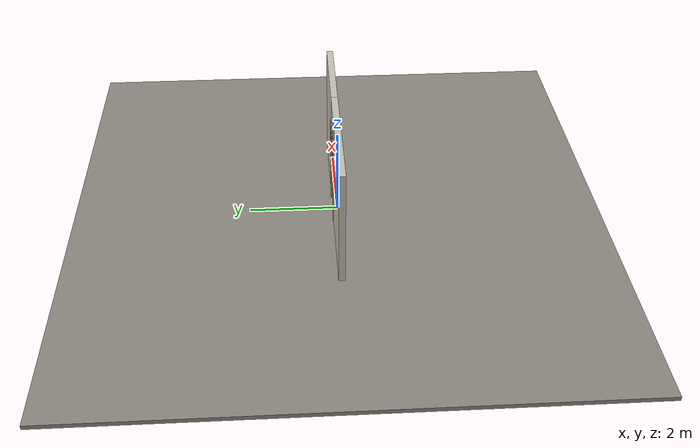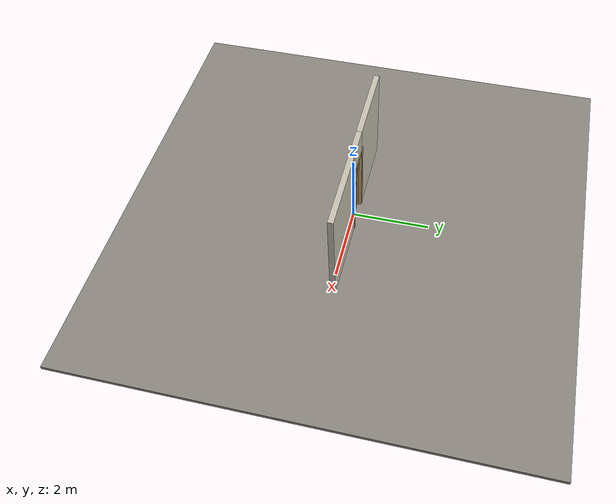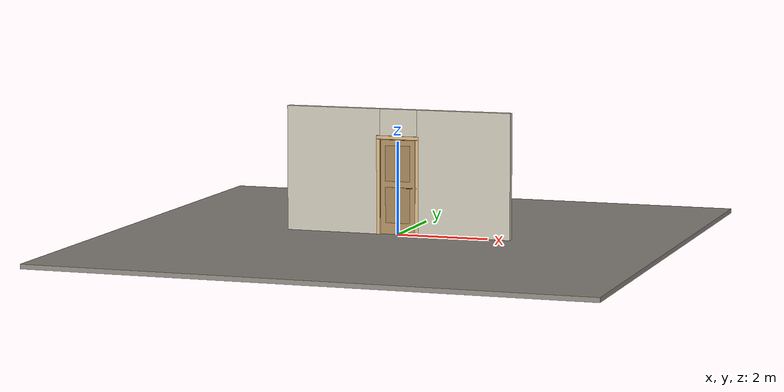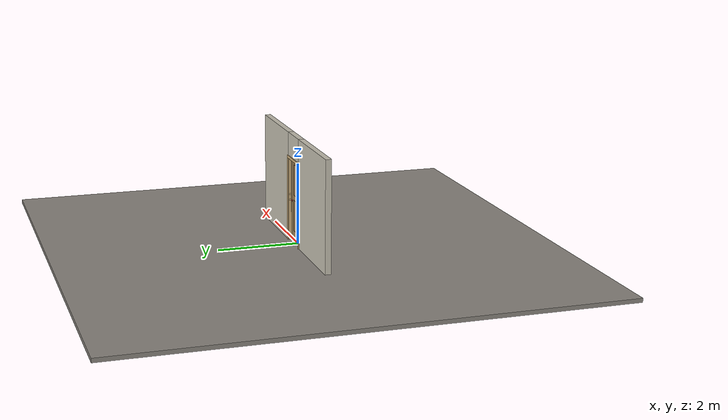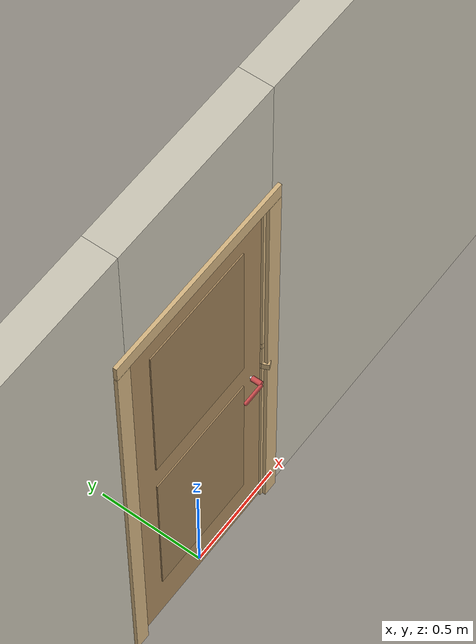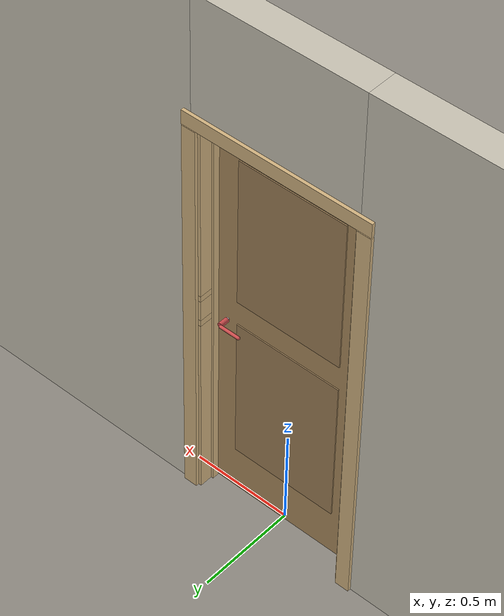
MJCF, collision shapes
<?xml version="1.0" ?>
<mujoco model="db0489_swing_single_full">
  <compiler angle="radian" meshdir="../../hardware" texturedir="../../textures" autolimits="true" inertiafromgeom="false"/>
  <option timestep="0.002" integrator="implicitfast" cone="elliptic" impratio="10" noslip_iterations="3">
    <flag multiccd="enable"/>
  </option>
  <size memory="16M"/>
  <default>
    <geom condim="4" solref="0.005 1" solimp="0.95 0.99 0.001"/>
    <joint solreflimit="0.005 1" solimplimit="0.95 0.99 0.001"/>
    <tendon solreflimit="0.005 1"/>
    <equality solref="0.002 1"/>
  </default>
  <visual>
    <headlight ambient="0.4 0.4 0.4" diffuse="0.7 0.7 0.7" specular="0.2 0.2 0.2"/>
    <quality shadowsize="4096"/>
    <map znear="0.01" zfar="60"/>
  </visual>
  <asset>
    <mesh name="hinge_e53abd72ad" file="hinge_e53abd72ad.obj"/>
    <mesh name="hinge_jamb_c17a76d68c" file="hinge_jamb_c17a76d68c.obj"/>
    <mesh name="lever_748f08efca" file="lever_748f08efca.obj"/>
    <material name="mat_floor" rgba="0.55 0.53 0.5 1" specular="0.2" shininess="0.15" reflectance="0"/>
    <material name="mat_wall" rgba="0.78 0.76 0.7 1" specular="0.2" shininess="0.1" reflectance="0"/>
    <material name="mat_leaf" rgba="0.667 0.541 0.366 1" specular="0.2" shininess="0.45" reflectance="0"/>
    <material name="mat_leaf_panel" rgba="0.614 0.498 0.337 1" specular="0.2" shininess="0.45" reflectance="0"/>
    <material name="mat_hinge" rgba="0.65 0.66 0.68 1" specular="0.74" shininess="0.5" reflectance="0.36"/>
    <material name="mat_op_chrome" rgba="0.9 0.9 0.92 1" specular="0.8" shininess="0.9" reflectance="0.4"/>
    <material name="mat_trim" rgba="0.85 0.66 0.3 1" specular="0.8" shininess="0.75" reflectance="0.4"/>
    <material name="mat_bolt" rgba="0.85 0.66 0.3 1" specular="0.8" shininess="0.75" reflectance="0.4"/>
    <material name="mat_deadbolt" rgba="0.85 0.66 0.3 1" specular="0.8" shininess="0.75" reflectance="0.4"/>
    <material name="mat_frame" rgba="0.82 0.7 0.5 1" specular="0.2" shininess="0.45" reflectance="0"/>
    <texture name="skybox" type="skybox" builtin="gradient" rgb1="0.6 0.7 0.85" rgb2="0.9 0.92 0.95" width="256" height="256"/>
  </asset>
  <worldbody>
    <light name="sun" pos="1.5 -2.5 4" dir="-0.3 0.5 -0.8" directional="true" diffuse="0.8 0.8 0.8" specular="0.3 0.3 0.3" castshadow="true"/>
    <light name="fill" pos="-1.5 2.5 3" dir="0.3 -0.5 -0.7" directional="true" diffuse="0.35 0.35 0.4" castshadow="false"/>
    <camera name="robot_view" pos="0 -2.496687 1.734312" xyaxes="1 0 0 0 0.26963 0.962964" fovy="52"/>
    <camera name="far_view" pos="0 2.587687 1.734312" xyaxes="-1 0 0 0 -0.26963 0.962964" fovy="52"/>
    <camera name="iso" pos="1.932062 -2.089938 2.141063" xyaxes="0.741536 0.670913 0 -0.242917 0.268487 0.932151" fovy="46"/>
    <camera name="detail_handle" pos="0.4109 -0.875 1.296" xyaxes="0.97561 0.219512 0 -0.070934 0.315262 0.94635" fovy="38"/>
    <geom name="floor" type="box" size="6 6 0.05" pos="0 0 -0.05" material="mat_floor" group="0" contype="1" conaffinity="1" friction="0.8 0.005 0.0001" density="2400"/>
    <geom name="wall_left" type="box" size="1.04825 0.0725 1.35" pos="-1.45175 0.0455 1.35" material="mat_wall" group="0" contype="1" conaffinity="1" friction="0.6 0.005 0.0001" density="800"/>
    <geom name="wall_right" type="box" size="1.03325 0.0725 1.35" pos="1.46675 0.0455 1.35" material="mat_wall" group="0" contype="1" conaffinity="1" friction="0.6 0.005 0.0001" density="800"/>
    <geom name="wall_header" type="box" size="0.4185 0.0725 0.303" pos="0.015 0.0455 2.397" material="mat_wall" group="0" contype="1" conaffinity="1" friction="0.6 0.005 0.0001" density="800"/>
    <geom name="hinge_0_jamb" type="mesh" mesh="hinge_jamb_c17a76d68c" pos="-0.3815 -0.027 0.259" material="mat_hinge" group="1" contype="0" conaffinity="0" density="7850"/>
    <geom name="hinge_1_jamb" type="mesh" mesh="hinge_jamb_c17a76d68c" pos="-0.3815 -0.027 1.025" material="mat_hinge" group="1" contype="0" conaffinity="0" density="7850"/>
    <geom name="hinge_2_jamb" type="mesh" mesh="hinge_jamb_c17a76d68c" pos="-0.3815 -0.027 1.861" material="mat_hinge" group="1" contype="0" conaffinity="0" density="7850"/>
    <geom name="leaf_deadbolt_strike_b" type="box" size="0.0155 0.003 0.0005" pos="0.384 0 1.1375" quat="-0.5 -0.5 0.5 0.5" material="mat_deadbolt" group="1" contype="0" conaffinity="0" density="7800"/>
    <geom name="leaf_deadbolt_strike_l" type="box" size="0.003 0.0155 0.0005" pos="0.384 0.0125 1.156" quat="-0.5 -0.5 0.5 0.5" material="mat_deadbolt" group="1" contype="0" conaffinity="0" density="7800"/>
    <geom name="leaf_deadbolt_strike_t" type="box" size="0.0155 0.003 0.0005" pos="0.384 0 1.1745" quat="-0.5 -0.5 0.5 0.5" material="mat_deadbolt" group="1" contype="0" conaffinity="0" density="7800"/>
    <geom name="leaf_deadbolt_strike_r" type="box" size="0.003 0.0155 0.0005" pos="0.384 -0.0125 1.156" quat="-0.5 -0.5 0.5 0.5" material="mat_deadbolt" group="1" contype="0" conaffinity="0" density="7800"/>
    <geom name="jamb_hinge" type="box" size="0.0095 0.0725 1.0225" pos="-0.394 0.0455 1.0225" material="mat_frame" group="0" contype="1" conaffinity="1" friction="0.6 0.005 0.0001" density="400"/>
    <geom name="strike_1016_wall_n" type="box" size="0.0245 0.055075 0.0167" pos="0.409 0.062925 1.016" material="mat_frame" group="0" contype="1" conaffinity="1" friction="0.6 0.005 0.0001" density="400"/>
    <geom name="strike_1016_wall_p" type="box" size="0.0245 0.008 0.0167" pos="0.409 -0.01585 1.016" material="mat_frame" group="0" contype="1" conaffinity="1" friction="0.6 0.005 0.0001" density="400"/>
    <geom name="strike_1016_ramp" type="box" size="0.0245 0.01649 0.0167" pos="0.413636 -0.028673 1.016" quat="0.977148 0 0 0.212558" material="mat_frame" group="0" contype="1" conaffinity="1" friction="0.12 0.005 0.0001" density="400"/>
    <geom name="strike_1016_back" type="box" size="0.01615 0.00785 0.0167" pos="0.41735 0 1.016" material="mat_frame" group="0" contype="1" conaffinity="1" friction="0.6 0.005 0.0001" density="400"/>
    <geom name="strike_1156_wall_n" type="box" size="0.0245 0.05425 0.0155" pos="0.409 0.06375 1.156" material="mat_frame" group="0" contype="1" conaffinity="1" friction="0.6 0.005 0.0001" density="400"/>
    <geom name="strike_1156_wall_p" type="box" size="0.0245 0.00875 0.0155" pos="0.409 -0.01825 1.156" material="mat_frame" group="0" contype="1" conaffinity="1" friction="0.6 0.005 0.0001" density="400"/>
    <geom name="strike_1156_back" type="box" size="0.0098 0.0095 0.0155" pos="0.4237 0 1.156" material="mat_frame" group="0" contype="1" conaffinity="1" friction="0.6 0.005 0.0001" density="400"/>
    <geom name="jamb_strike_0" type="box" size="0.0245 0.0725 0.49965" pos="0.409 0.0455 0.49965" material="mat_frame" group="0" contype="1" conaffinity="1" friction="0.6 0.005 0.0001" density="400"/>
    <geom name="jamb_strike_1" type="box" size="0.0245 0.0725 0.0539" pos="0.409 0.0455 1.0866" material="mat_frame" group="0" contype="1" conaffinity="1" friction="0.6 0.005 0.0001" density="400"/>
    <geom name="jamb_strike_2" type="box" size="0.0245 0.0725 0.43675" pos="0.409 0.0455 1.60825" material="mat_frame" group="0" contype="1" conaffinity="1" friction="0.6 0.005 0.0001" density="400"/>
    <geom name="jamb_head" type="box" size="0.4185 0.0725 0.0095" pos="0.015 0.0455 2.0545" material="mat_frame" group="0" contype="1" conaffinity="1" friction="0.6 0.005 0.0001" density="400"/>
    <geom name="head_stud" type="box" size="0.4185 0.0725 0.015" pos="0.015 0.0455 2.079" material="mat_wall" group="0" contype="1" conaffinity="1" friction="0.6 0.005 0.0001" density="500"/>
    <geom name="stop_hinge" type="box" size="0.0055 0.016 1.0225" pos="-0.379 0.0365 1.0225" material="mat_frame" group="0" contype="1" conaffinity="1" friction="0.6 0.005 0.0001" density="400"/>
    <geom name="stop_strike" type="box" size="0.0055 0.016 1.0225" pos="0.379 0.0365 1.0225" material="mat_frame" group="0" contype="1" conaffinity="1" friction="0.6 0.005 0.0001" density="400"/>
    <geom name="stop_head" type="box" size="0.3845 0.016 0.0055" pos="0 0.0365 2.0395" material="mat_frame" group="0" contype="1" conaffinity="1" friction="0.6 0.005 0.0001" density="400"/>
    <geom name="casing_l_n" type="box" size="0.035 0.008 1.032" pos="-0.4335 -0.035 1.0225" material="mat_frame" group="2" contype="0" conaffinity="0" density="400"/>
    <geom name="casing_r_n" type="box" size="0.035 0.008 1.032" pos="0.4335 -0.035 1.0225" material="mat_frame" group="2" contype="0" conaffinity="0" density="400"/>
    <geom name="casing_h_n" type="box" size="0.4685 0.008 0.035" pos="0 -0.035 2.094" material="mat_frame" group="2" contype="0" conaffinity="0" density="400"/>
    <geom name="casing_l_p" type="box" size="0.035 0.008 1.032" pos="-0.4335 0.126 1.0225" material="mat_frame" group="2" contype="0" conaffinity="0" density="400"/>
    <geom name="casing_r_p" type="box" size="0.035 0.008 1.032" pos="0.4335 0.126 1.0225" material="mat_frame" group="2" contype="0" conaffinity="0" density="400"/>
    <geom name="casing_h_p" type="box" size="0.4685 0.008 0.035" pos="0 0.126 2.094" material="mat_frame" group="2" contype="0" conaffinity="0" density="400"/>
    <site name="approach_point" pos="0 -1.5 0" quat="1 0 0 0" size="0.05" rgba="0.2 0.9 0.2 0.5" group="4"/>
    <site name="goal_point" pos="0 1.5 0" quat="1 0 0 0" size="0.05" rgba="0.2 0.9 0.2 0.5" group="4"/>
    <site name="door_plane_center" pos="0 0 1.0225" quat="1 0 0 0" size="0.02" rgba="0.2 0.9 0.2 0.5" group="4"/>
    <body name="leaf" pos="-0.3845 0 0">
      <inertial pos="0.377773 -0.000263 1.025498" mass="25.490119" quat="-0.499617 0.500596 -0.499395 -0.500391" diaginertia="1.281517733 8.80183995 10.076297"/>
      <joint name="leaf_hinge" type="hinge" axis="0 0 -1" pos="0.003 -0.027 0" limited="true" range="0 1.745329" damping="0.173726" frictionloss="0.671106" armature="0.02"/>
      <geom name="leaf_slab" type="box" size="0.381 0.02 1.016" pos="0.384 0 1.025" material="mat_leaf" group="0" contype="1" conaffinity="1" friction="0.35 0.005 0.0001" density="1"/>
      <geom name="leaf_panel_0_n" type="box" size="0.271 0.003 0.38422" pos="0.384 -0.023 0.63674" material="mat_leaf_panel" group="1" contype="0" conaffinity="0" density="1"/>
      <geom name="leaf_panel_0_p" type="box" size="0.271 0.003 0.38422" pos="0.384 0.023 0.63674" material="mat_leaf_panel" group="1" contype="0" conaffinity="0" density="1"/>
      <geom name="leaf_panel_1_n" type="box" size="0.271 0.003 0.38422" pos="0.384 -0.023 1.53518" material="mat_leaf_panel" group="1" contype="0" conaffinity="0" density="1"/>
      <geom name="leaf_panel_1_p" type="box" size="0.271 0.003 0.38422" pos="0.384 0.023 1.53518" material="mat_leaf_panel" group="1" contype="0" conaffinity="0" density="1"/>
      <geom name="hinge_0" type="mesh" mesh="hinge_e53abd72ad" pos="0.003 -0.027 0.259" material="mat_hinge" group="1" contype="0" conaffinity="0" density="7850"/>
      <geom name="hinge_1" type="mesh" mesh="hinge_e53abd72ad" pos="0.003 -0.027 1.025" material="mat_hinge" group="1" contype="0" conaffinity="0" density="7850"/>
      <geom name="hinge_2" type="mesh" mesh="hinge_e53abd72ad" pos="0.003 -0.027 1.861" material="mat_hinge" group="1" contype="0" conaffinity="0" density="7850"/>
      <geom name="leaf_latch_bolt_faceplate" type="box" size="0.0006 0.01235 0.0267" pos="0.7644 0 1.016" material="mat_bolt" group="1" contype="0" conaffinity="0" density="8500"/>
      <geom name="leaf_deadbolt_faceplate" type="box" size="0.0006 0.014 0.0245" pos="0.7644 0 1.156" material="mat_deadbolt" group="1" contype="0" conaffinity="0" density="8500"/>
      <site name="leaf_edge_mid" pos="0.765 0 1.016" quat="1 0 0 0" size="0.02" rgba="0.2 0.9 0.2 0.5" group="4"/>
      <body name="leaf_handle" pos="0.705 0 1.016">
        <inertial pos="-0.024289 0 0" mass="0.844246" quat="0.707107 0 0 -0.707107" diaginertia="0.00118518 0.003037122 0.004085535"/>
        <joint name="leaf_handle_hinge" type="hinge" axis="0 -1 0" limited="true" range="0 0.87" damping="0.205085" frictionloss="0.04" stiffness="0.9" springref="-0.444444" armature="0.01"/>
        <geom name="leaf_handle_spindle" type="cylinder" size="0.006 0.028" pos="0 0 0" quat="0.707107 -0.707107 0 0" material="mat_op_chrome" group="1" contype="0" conaffinity="0" density="7850"/>
        <geom name="leaf_handle_lever_n" type="mesh" mesh="lever_748f08efca" pos="0 -0.02 0" quat="0.707107 0.707107 0 0" material="mat_op_chrome" group="1" contype="0" conaffinity="0" density="3000"/>
        <geom name="leaf_handle_lever_col_n" type="capsule" size="0.008 0.048" pos="-0.056 -0.075 0" quat="0.707107 0 -0.707107 0" material="mat_op_chrome" group="3" contype="1" conaffinity="1" rgba="0.8 0.3 0.3 0.25" friction="0.7 0.01 0.0001" density="3000"/>
        <geom name="leaf_handle_hub_col_n" type="cylinder" size="0.012 0.022" pos="0 -0.05 0" quat="0.707107 -0.707107 0 0" material="mat_op_chrome" group="3" contype="1" conaffinity="1" rgba="0.8 0.3 0.3 0.25" friction="0.6 0.005 0.0001" density="3000"/>
        <geom name="leaf_handle_lever_p" type="mesh" mesh="lever_748f08efca" pos="0 0.02 0" quat="-0.707107 0.707107 0 0" material="mat_op_chrome" group="1" contype="0" conaffinity="0" density="3000"/>
        <geom name="leaf_handle_lever_col_p" type="capsule" size="0.008 0.048" pos="-0.056 0.075 0" quat="0.707107 0 -0.707107 0" material="mat_op_chrome" group="3" contype="1" conaffinity="1" rgba="0.8 0.3 0.3 0.25" friction="0.7 0.01 0.0001" density="3000"/>
        <geom name="leaf_handle_hub_col_p" type="cylinder" size="0.012 0.022" pos="0 0.05 0" quat="0.707107 -0.707107 0 0" material="mat_op_chrome" group="3" contype="1" conaffinity="1" rgba="0.8 0.3 0.3 0.25" friction="0.6 0.005 0.0001" density="3000"/>
        <site name="leaf_handle_grip_n" pos="-0.0896 -0.075 0" quat="1 0 0 0" size="0.012" rgba="0.2 0.9 0.2 0.5" group="4"/>
        <site name="leaf_handle_grip_p" pos="-0.0896 0.075 0" quat="1 0 0 0" size="0.012" rgba="0.2 0.9 0.2 0.5" group="4"/>
      </body>
      <body name="leaf_latch_bolt" pos="0.765 0 1.016">
        <inertial pos="-0.00865 0 0" mass="0.041419" quat="0.92388 -0.382683 0 0" diaginertia="0.000000798 0.000005598 0.000005598"/>
        <joint name="leaf_latch_bolt_slide" type="slide" axis="-1 0 0" limited="true" range="0 0.0127" damping="2" frictionloss="0.3" stiffness="300" springref="-0.008333" armature="0.1"/>
        <geom name="leaf_latch_bolt_capsule" type="capsule" size="0.00635 0.015" pos="-0.00865 0 0" quat="0.707107 0 0.707107 0" material="mat_bolt" group="0" contype="1" conaffinity="1" friction="0.2 0.005 0.0001" density="8500"/>
      </body>
      <body name="leaf_deadbolt" pos="0.765 0 1.156">
        <inertial pos="-0.0023 0 0" mass="0.18836" quat="0 0 0.707107 0.707107" diaginertia="0.000013829 0.000052194 0.000057986"/>
        <geom name="leaf_deadbolt_box" type="box" size="0.0277 0.008 0.0125" pos="-0.0023 0 0" material="mat_deadbolt" group="0" contype="1" conaffinity="1" friction="0.3 0.005 0.0001" density="8500"/>
      </body>
    </body>
  </worldbody>
  <tendon>
    <fixed name="leaf_latch_bolt_coupling" limited="true" range="0 10">
      <joint joint="leaf_latch_bolt_slide" coef="1"/>
      <joint joint="leaf_handle_hinge" coef="-0.016076"/>
    </fixed>
  </tendon>
  <sensor>
    <jointpos name="leaf_hinge_pos" joint="leaf_hinge"/>
    <jointvel name="leaf_hinge_vel" joint="leaf_hinge"/>
    <jointpos name="leaf_handle_hinge_pos" joint="leaf_handle_hinge"/>
    <jointvel name="leaf_handle_hinge_vel" joint="leaf_handle_hinge"/>
    <jointpos name="leaf_latch_bolt_slide_pos" joint="leaf_latch_bolt_slide"/>
    <jointvel name="leaf_latch_bolt_slide_vel" joint="leaf_latch_bolt_slide"/>
  </sensor>
</mujoco>
